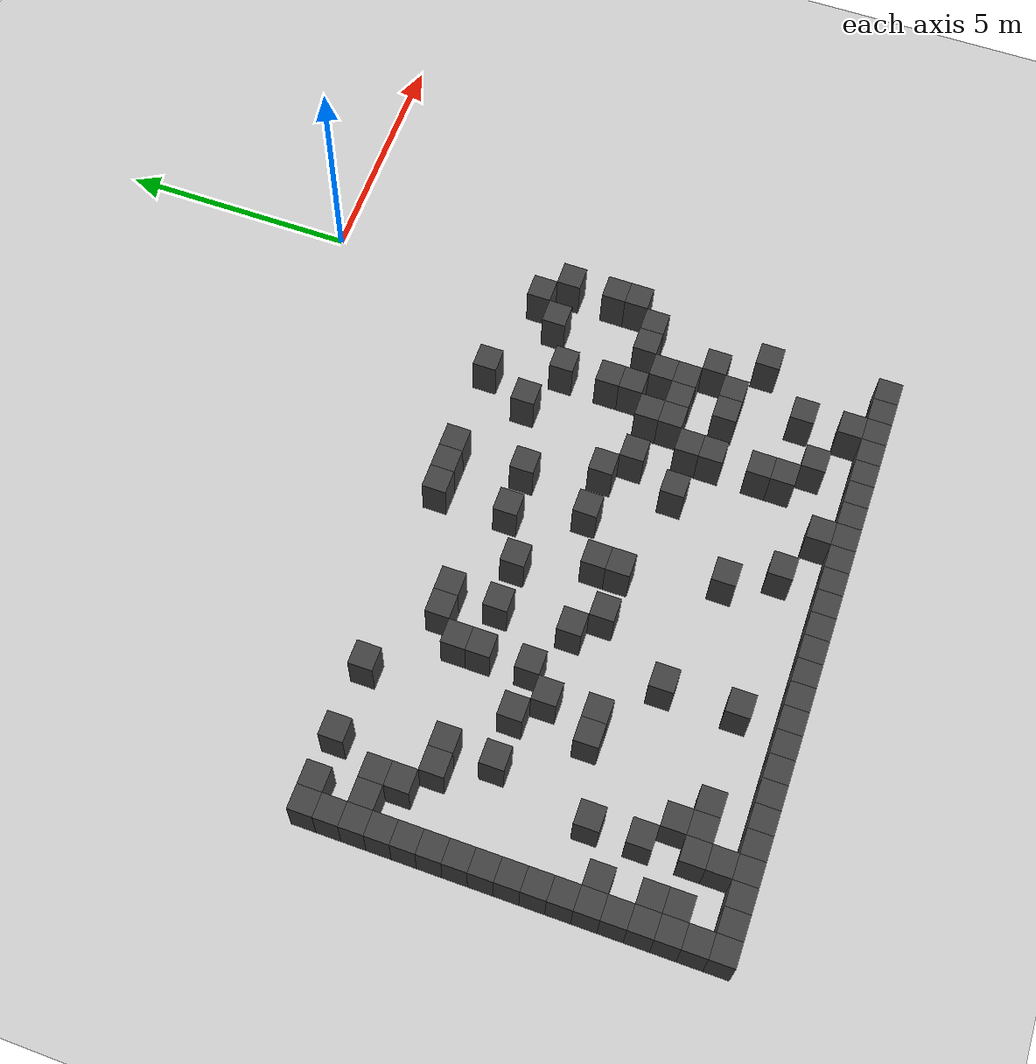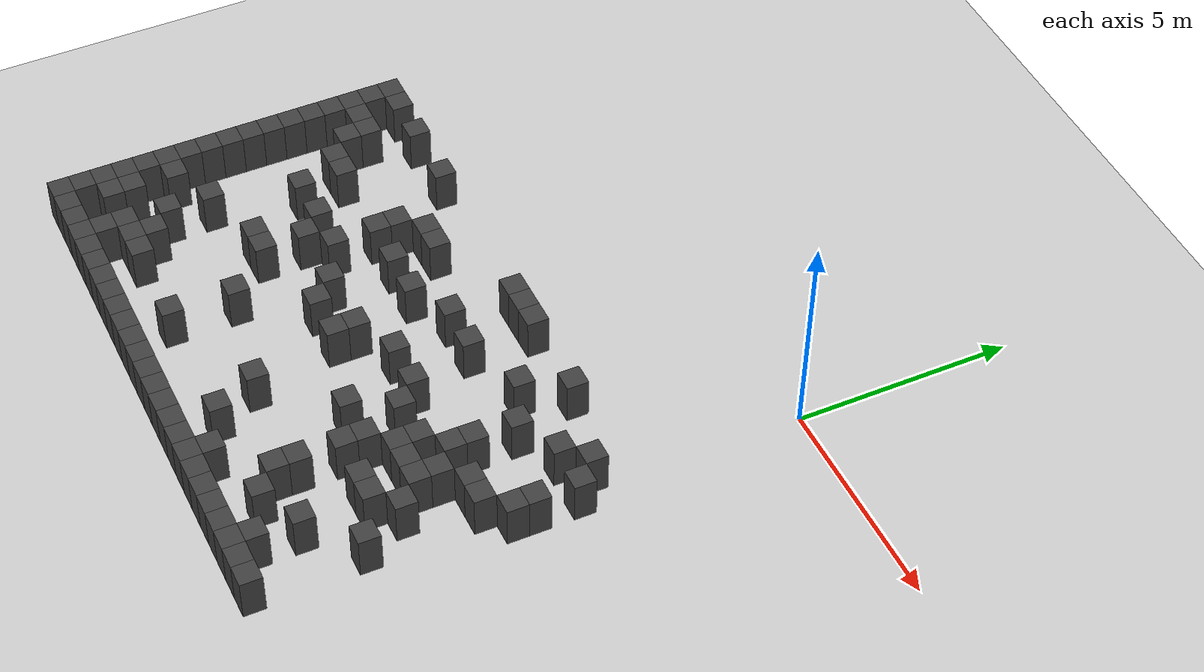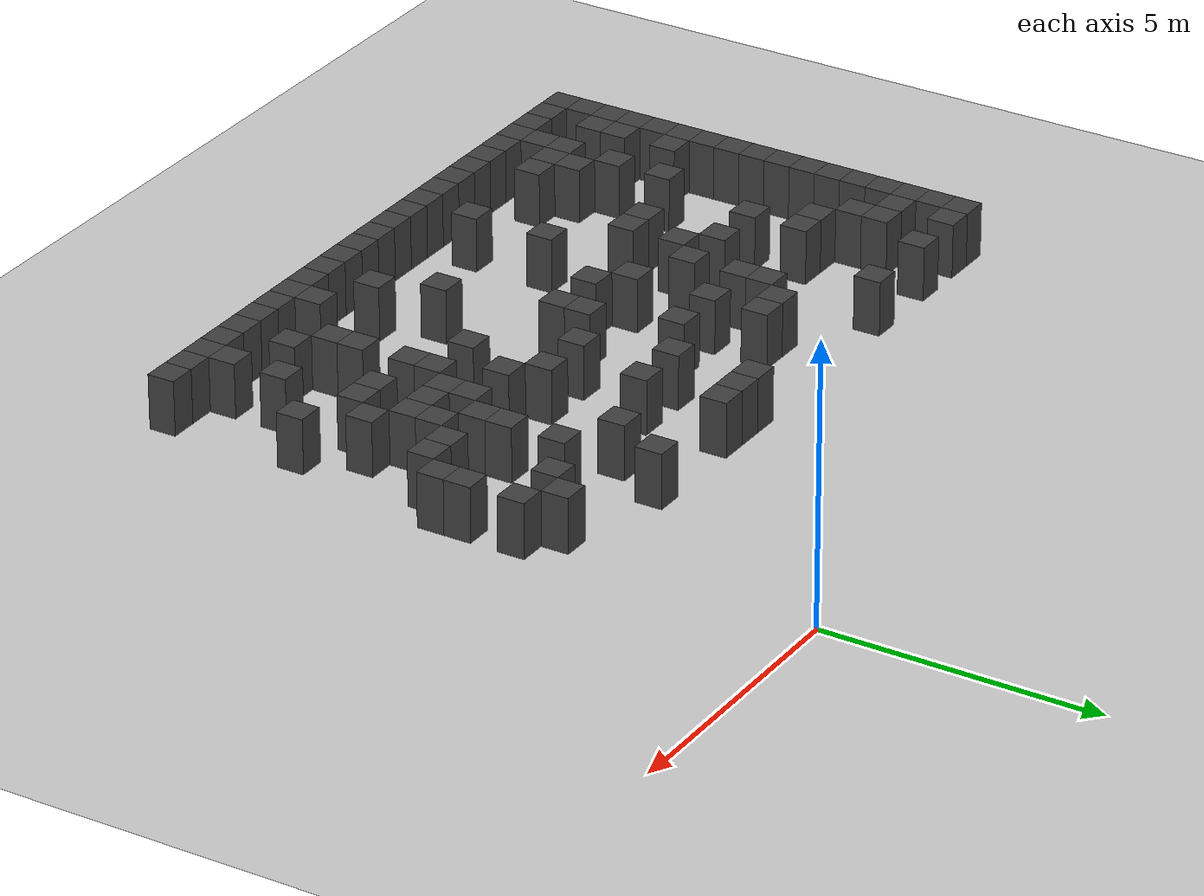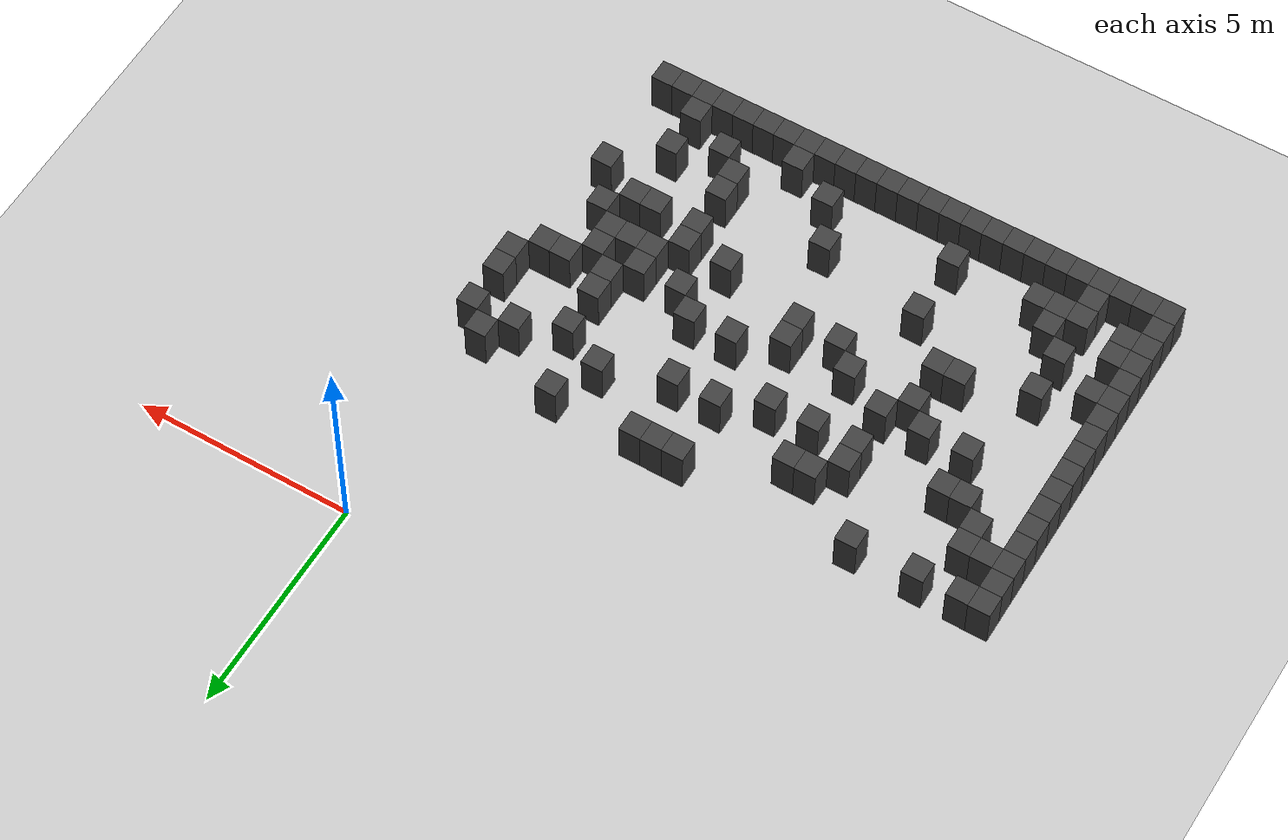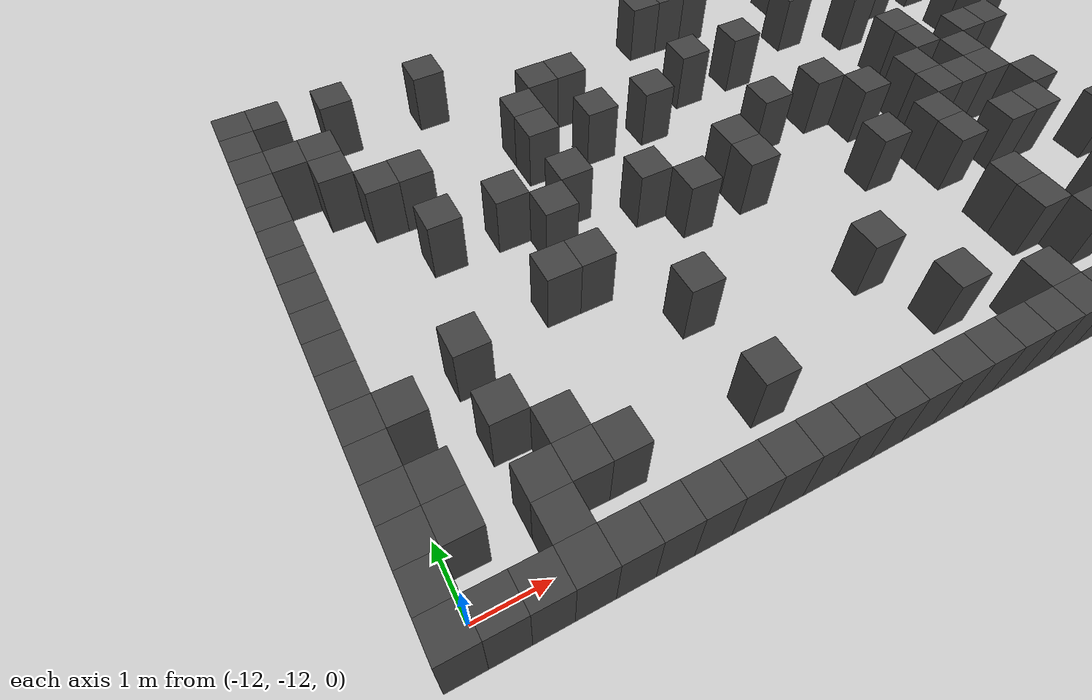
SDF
<sdf version="1.7">
 <world name="map_4581">
  <model name="ground_plane">
   <static>true</static>
   <link name="link">
    <collision name="collision">
     <geometry><plane><normal>0 0 1</normal><size>200 200</size></plane></geometry>
    </collision>
    <visual name="visual">
     <geometry><plane><normal>0 0 1</normal><size>200 200</size></plane></geometry>
     <material><ambient>0.8 0.8 0.8 1</ambient><diffuse>0.8 0.8 0.8 1</diffuse></material>
    </visual>
   </link>
  </model>
  <model name="maze_environment">
   <static>true</static>
   <link name="wall_452">
    <pose>-12.250 -4.250 0.500 0 0 0</pose>
    <collision name="col"><geometry><box><size>0.5 0.5 1.0</size></box></geometry></collision>
    <visual name="vis">
     <geometry><box><size>0.5 0.5 1.0</size></box></geometry>
     <material><ambient>0.15 0.15 0.15 1</ambient><diffuse>0.25 0.25 0.25 1</diffuse></material>
    </visual>
   </link>
   <link name="wall_453">
    <pose>-11.750 -4.250 0.500 0 0 0</pose>
    <collision name="col"><geometry><box><size>0.5 0.5 1.0</size></box></geometry></collision>
    <visual name="vis">
     <geometry><box><size>0.5 0.5 1.0</size></box></geometry>
     <material><ambient>0.15 0.15 0.15 1</ambient><diffuse>0.25 0.25 0.25 1</diffuse></material>
    </visual>
   </link>
   <link name="wall_454">
    <pose>-10.750 -4.250 0.500 0 0 0</pose>
    <collision name="col"><geometry><box><size>0.5 0.5 1.0</size></box></geometry></collision>
    <visual name="vis">
     <geometry><box><size>0.5 0.5 1.0</size></box></geometry>
     <material><ambient>0.15 0.15 0.15 1</ambient><diffuse>0.25 0.25 0.25 1</diffuse></material>
    </visual>
   </link>
   <link name="wall_455">
    <pose>-9.250 -4.250 0.500 0 0 0</pose>
    <collision name="col"><geometry><box><size>0.5 0.5 1.0</size></box></geometry></collision>
    <visual name="vis">
     <geometry><box><size>0.5 0.5 1.0</size></box></geometry>
     <material><ambient>0.15 0.15 0.15 1</ambient><diffuse>0.25 0.25 0.25 1</diffuse></material>
    </visual>
   </link>
   <link name="wall_456">
    <pose>-5.250 -4.250 0.500 0 0 0</pose>
    <collision name="col"><geometry><box><size>0.5 0.5 1.0</size></box></geometry></collision>
    <visual name="vis">
     <geometry><box><size>0.5 0.5 1.0</size></box></geometry>
     <material><ambient>0.15 0.15 0.15 1</ambient><diffuse>0.25 0.25 0.25 1</diffuse></material>
    </visual>
   </link>
   <link name="wall_457">
    <pose>-4.750 -4.250 0.500 0 0 0</pose>
    <collision name="col"><geometry><box><size>0.5 0.5 1.0</size></box></geometry></collision>
    <visual name="vis">
     <geometry><box><size>0.5 0.5 1.0</size></box></geometry>
     <material><ambient>0.15 0.15 0.15 1</ambient><diffuse>0.25 0.25 0.25 1</diffuse></material>
    </visual>
   </link>
   <link name="wall_458">
    <pose>-4.250 -4.250 0.500 0 0 0</pose>
    <collision name="col"><geometry><box><size>0.5 0.5 1.0</size></box></geometry></collision>
    <visual name="vis">
     <geometry><box><size>0.5 0.5 1.0</size></box></geometry>
     <material><ambient>0.15 0.15 0.15 1</ambient><diffuse>0.25 0.25 0.25 1</diffuse></material>
    </visual>
   </link>
   <link name="wall_459">
    <pose>-2.250 -4.250 0.500 0 0 0</pose>
    <collision name="col"><geometry><box><size>0.5 0.5 1.0</size></box></geometry></collision>
    <visual name="vis">
     <geometry><box><size>0.5 0.5 1.0</size></box></geometry>
     <material><ambient>0.15 0.15 0.15 1</ambient><diffuse>0.25 0.25 0.25 1</diffuse></material>
    </visual>
   </link>
   <link name="wall_466">
    <pose>-12.250 -4.750 0.500 0 0 0</pose>
    <collision name="col"><geometry><box><size>0.5 0.5 1.0</size></box></geometry></collision>
    <visual name="vis">
     <geometry><box><size>0.5 0.5 1.0</size></box></geometry>
     <material><ambient>0.15 0.15 0.15 1</ambient><diffuse>0.25 0.25 0.25 1</diffuse></material>
    </visual>
   </link>
   <link name="wall_467">
    <pose>-0.250 -4.750 0.500 0 0 0</pose>
    <collision name="col"><geometry><box><size>0.5 0.5 1.0</size></box></geometry></collision>
    <visual name="vis">
     <geometry><box><size>0.5 0.5 1.0</size></box></geometry>
     <material><ambient>0.15 0.15 0.15 1</ambient><diffuse>0.25 0.25 0.25 1</diffuse></material>
    </visual>
   </link>
   <link name="wall_474">
    <pose>-12.250 -5.250 0.500 0 0 0</pose>
    <collision name="col"><geometry><box><size>0.5 0.5 1.0</size></box></geometry></collision>
    <visual name="vis">
     <geometry><box><size>0.5 0.5 1.0</size></box></geometry>
     <material><ambient>0.15 0.15 0.15 1</ambient><diffuse>0.25 0.25 0.25 1</diffuse></material>
    </visual>
   </link>
   <link name="wall_475">
    <pose>-11.750 -5.250 0.500 0 0 0</pose>
    <collision name="col"><geometry><box><size>0.5 0.5 1.0</size></box></geometry></collision>
    <visual name="vis">
     <geometry><box><size>0.5 0.5 1.0</size></box></geometry>
     <material><ambient>0.15 0.15 0.15 1</ambient><diffuse>0.25 0.25 0.25 1</diffuse></material>
    </visual>
   </link>
   <link name="wall_476">
    <pose>-11.250 -5.250 0.500 0 0 0</pose>
    <collision name="col"><geometry><box><size>0.5 0.5 1.0</size></box></geometry></collision>
    <visual name="vis">
     <geometry><box><size>0.5 0.5 1.0</size></box></geometry>
     <material><ambient>0.15 0.15 0.15 1</ambient><diffuse>0.25 0.25 0.25 1</diffuse></material>
    </visual>
   </link>
   <link name="wall_477">
    <pose>-7.750 -5.250 0.500 0 0 0</pose>
    <collision name="col"><geometry><box><size>0.5 0.5 1.0</size></box></geometry></collision>
    <visual name="vis">
     <geometry><box><size>0.5 0.5 1.0</size></box></geometry>
     <material><ambient>0.15 0.15 0.15 1</ambient><diffuse>0.25 0.25 0.25 1</diffuse></material>
    </visual>
   </link>
   <link name="wall_478">
    <pose>-7.250 -5.250 0.500 0 0 0</pose>
    <collision name="col"><geometry><box><size>0.5 0.5 1.0</size></box></geometry></collision>
    <visual name="vis">
     <geometry><box><size>0.5 0.5 1.0</size></box></geometry>
     <material><ambient>0.15 0.15 0.15 1</ambient><diffuse>0.25 0.25 0.25 1</diffuse></material>
    </visual>
   </link>
   <link name="wall_479">
    <pose>-2.750 -5.250 0.500 0 0 0</pose>
    <collision name="col"><geometry><box><size>0.5 0.5 1.0</size></box></geometry></collision>
    <visual name="vis">
     <geometry><box><size>0.5 0.5 1.0</size></box></geometry>
     <material><ambient>0.15 0.15 0.15 1</ambient><diffuse>0.25 0.25 0.25 1</diffuse></material>
    </visual>
   </link>
   <link name="wall_480">
    <pose>-0.750 -5.250 0.500 0 0 0</pose>
    <collision name="col"><geometry><box><size>0.5 0.5 1.0</size></box></geometry></collision>
    <visual name="vis">
     <geometry><box><size>0.5 0.5 1.0</size></box></geometry>
     <material><ambient>0.15 0.15 0.15 1</ambient><diffuse>0.25 0.25 0.25 1</diffuse></material>
    </visual>
   </link>
   <link name="wall_481">
    <pose>0.250 -5.250 0.500 0 0 0</pose>
    <collision name="col"><geometry><box><size>0.5 0.5 1.0</size></box></geometry></collision>
    <visual name="vis">
     <geometry><box><size>0.5 0.5 1.0</size></box></geometry>
     <material><ambient>0.15 0.15 0.15 1</ambient><diffuse>0.25 0.25 0.25 1</diffuse></material>
    </visual>
   </link>
   <link name="wall_489">
    <pose>-12.250 -5.750 0.500 0 0 0</pose>
    <collision name="col"><geometry><box><size>0.5 0.5 1.0</size></box></geometry></collision>
    <visual name="vis">
     <geometry><box><size>0.5 0.5 1.0</size></box></geometry>
     <material><ambient>0.15 0.15 0.15 1</ambient><diffuse>0.25 0.25 0.25 1</diffuse></material>
    </visual>
   </link>
   <link name="wall_490">
    <pose>-11.250 -5.750 0.500 0 0 0</pose>
    <collision name="col"><geometry><box><size>0.5 0.5 1.0</size></box></geometry></collision>
    <visual name="vis">
     <geometry><box><size>0.5 0.5 1.0</size></box></geometry>
     <material><ambient>0.15 0.15 0.15 1</ambient><diffuse>0.25 0.25 0.25 1</diffuse></material>
    </visual>
   </link>
   <link name="wall_491">
    <pose>-8.250 -5.750 0.500 0 0 0</pose>
    <collision name="col"><geometry><box><size>0.5 0.5 1.0</size></box></geometry></collision>
    <visual name="vis">
     <geometry><box><size>0.5 0.5 1.0</size></box></geometry>
     <material><ambient>0.15 0.15 0.15 1</ambient><diffuse>0.25 0.25 0.25 1</diffuse></material>
    </visual>
   </link>
   <link name="wall_492">
    <pose>-5.250 -5.750 0.500 0 0 0</pose>
    <collision name="col"><geometry><box><size>0.5 0.5 1.0</size></box></geometry></collision>
    <visual name="vis">
     <geometry><box><size>0.5 0.5 1.0</size></box></geometry>
     <material><ambient>0.15 0.15 0.15 1</ambient><diffuse>0.25 0.25 0.25 1</diffuse></material>
    </visual>
   </link>
   <link name="wall_493">
    <pose>-4.250 -5.750 0.500 0 0 0</pose>
    <collision name="col"><geometry><box><size>0.5 0.5 1.0</size></box></geometry></collision>
    <visual name="vis">
     <geometry><box><size>0.5 0.5 1.0</size></box></geometry>
     <material><ambient>0.15 0.15 0.15 1</ambient><diffuse>0.25 0.25 0.25 1</diffuse></material>
    </visual>
   </link>
   <link name="wall_494">
    <pose>-1.750 -5.750 0.500 0 0 0</pose>
    <collision name="col"><geometry><box><size>0.5 0.5 1.0</size></box></geometry></collision>
    <visual name="vis">
     <geometry><box><size>0.5 0.5 1.0</size></box></geometry>
     <material><ambient>0.15 0.15 0.15 1</ambient><diffuse>0.25 0.25 0.25 1</diffuse></material>
    </visual>
   </link>
   <link name="wall_501">
    <pose>-12.250 -6.250 0.500 0 0 0</pose>
    <collision name="col"><geometry><box><size>0.5 0.5 1.0</size></box></geometry></collision>
    <visual name="vis">
     <geometry><box><size>0.5 0.5 1.0</size></box></geometry>
     <material><ambient>0.15 0.15 0.15 1</ambient><diffuse>0.25 0.25 0.25 1</diffuse></material>
    </visual>
   </link>
   <link name="wall_502">
    <pose>-10.750 -6.250 0.500 0 0 0</pose>
    <collision name="col"><geometry><box><size>0.5 0.5 1.0</size></box></geometry></collision>
    <visual name="vis">
     <geometry><box><size>0.5 0.5 1.0</size></box></geometry>
     <material><ambient>0.15 0.15 0.15 1</ambient><diffuse>0.25 0.25 0.25 1</diffuse></material>
    </visual>
   </link>
   <link name="wall_503">
    <pose>-10.250 -6.250 0.500 0 0 0</pose>
    <collision name="col"><geometry><box><size>0.5 0.5 1.0</size></box></geometry></collision>
    <visual name="vis">
     <geometry><box><size>0.5 0.5 1.0</size></box></geometry>
     <material><ambient>0.15 0.15 0.15 1</ambient><diffuse>0.25 0.25 0.25 1</diffuse></material>
    </visual>
   </link>
   <link name="wall_504">
    <pose>-8.250 -6.250 0.500 0 0 0</pose>
    <collision name="col"><geometry><box><size>0.5 0.5 1.0</size></box></geometry></collision>
    <visual name="vis">
     <geometry><box><size>0.5 0.5 1.0</size></box></geometry>
     <material><ambient>0.15 0.15 0.15 1</ambient><diffuse>0.25 0.25 0.25 1</diffuse></material>
    </visual>
   </link>
   <link name="wall_505">
    <pose>-7.250 -6.250 0.500 0 0 0</pose>
    <collision name="col"><geometry><box><size>0.5 0.5 1.0</size></box></geometry></collision>
    <visual name="vis">
     <geometry><box><size>0.5 0.5 1.0</size></box></geometry>
     <material><ambient>0.15 0.15 0.15 1</ambient><diffuse>0.25 0.25 0.25 1</diffuse></material>
    </visual>
   </link>
   <link name="wall_506">
    <pose>-6.250 -6.250 0.500 0 0 0</pose>
    <collision name="col"><geometry><box><size>0.5 0.5 1.0</size></box></geometry></collision>
    <visual name="vis">
     <geometry><box><size>0.5 0.5 1.0</size></box></geometry>
     <material><ambient>0.15 0.15 0.15 1</ambient><diffuse>0.25 0.25 0.25 1</diffuse></material>
    </visual>
   </link>
   <link name="wall_507">
    <pose>0.250 -6.250 0.500 0 0 0</pose>
    <collision name="col"><geometry><box><size>0.5 0.5 1.0</size></box></geometry></collision>
    <visual name="vis">
     <geometry><box><size>0.5 0.5 1.0</size></box></geometry>
     <material><ambient>0.15 0.15 0.15 1</ambient><diffuse>0.25 0.25 0.25 1</diffuse></material>
    </visual>
   </link>
   <link name="wall_516">
    <pose>-12.250 -6.750 0.500 0 0 0</pose>
    <collision name="col"><geometry><box><size>0.5 0.5 1.0</size></box></geometry></collision>
    <visual name="vis">
     <geometry><box><size>0.5 0.5 1.0</size></box></geometry>
     <material><ambient>0.15 0.15 0.15 1</ambient><diffuse>0.25 0.25 0.25 1</diffuse></material>
    </visual>
   </link>
   <link name="wall_517">
    <pose>-1.750 -6.750 0.500 0 0 0</pose>
    <collision name="col"><geometry><box><size>0.5 0.5 1.0</size></box></geometry></collision>
    <visual name="vis">
     <geometry><box><size>0.5 0.5 1.0</size></box></geometry>
     <material><ambient>0.15 0.15 0.15 1</ambient><diffuse>0.25 0.25 0.25 1</diffuse></material>
    </visual>
   </link>
   <link name="wall_518">
    <pose>0.250 -6.750 0.500 0 0 0</pose>
    <collision name="col"><geometry><box><size>0.5 0.5 1.0</size></box></geometry></collision>
    <visual name="vis">
     <geometry><box><size>0.5 0.5 1.0</size></box></geometry>
     <material><ambient>0.15 0.15 0.15 1</ambient><diffuse>0.25 0.25 0.25 1</diffuse></material>
    </visual>
   </link>
   <link name="wall_525">
    <pose>-12.250 -7.250 0.500 0 0 0</pose>
    <collision name="col"><geometry><box><size>0.5 0.5 1.0</size></box></geometry></collision>
    <visual name="vis">
     <geometry><box><size>0.5 0.5 1.0</size></box></geometry>
     <material><ambient>0.15 0.15 0.15 1</ambient><diffuse>0.25 0.25 0.25 1</diffuse></material>
    </visual>
   </link>
   <link name="wall_526">
    <pose>-10.250 -7.250 0.500 0 0 0</pose>
    <collision name="col"><geometry><box><size>0.5 0.5 1.0</size></box></geometry></collision>
    <visual name="vis">
     <geometry><box><size>0.5 0.5 1.0</size></box></geometry>
     <material><ambient>0.15 0.15 0.15 1</ambient><diffuse>0.25 0.25 0.25 1</diffuse></material>
    </visual>
   </link>
   <link name="wall_527">
    <pose>-9.250 -7.250 0.500 0 0 0</pose>
    <collision name="col"><geometry><box><size>0.5 0.5 1.0</size></box></geometry></collision>
    <visual name="vis">
     <geometry><box><size>0.5 0.5 1.0</size></box></geometry>
     <material><ambient>0.15 0.15 0.15 1</ambient><diffuse>0.25 0.25 0.25 1</diffuse></material>
    </visual>
   </link>
   <link name="wall_528">
    <pose>-8.250 -7.250 0.500 0 0 0</pose>
    <collision name="col"><geometry><box><size>0.5 0.5 1.0</size></box></geometry></collision>
    <visual name="vis">
     <geometry><box><size>0.5 0.5 1.0</size></box></geometry>
     <material><ambient>0.15 0.15 0.15 1</ambient><diffuse>0.25 0.25 0.25 1</diffuse></material>
    </visual>
   </link>
   <link name="wall_529">
    <pose>-4.750 -7.250 0.500 0 0 0</pose>
    <collision name="col"><geometry><box><size>0.5 0.5 1.0</size></box></geometry></collision>
    <visual name="vis">
     <geometry><box><size>0.5 0.5 1.0</size></box></geometry>
     <material><ambient>0.15 0.15 0.15 1</ambient><diffuse>0.25 0.25 0.25 1</diffuse></material>
    </visual>
   </link>
   <link name="wall_530">
    <pose>-3.750 -7.250 0.500 0 0 0</pose>
    <collision name="col"><geometry><box><size>0.5 0.5 1.0</size></box></geometry></collision>
    <visual name="vis">
     <geometry><box><size>0.5 0.5 1.0</size></box></geometry>
     <material><ambient>0.15 0.15 0.15 1</ambient><diffuse>0.25 0.25 0.25 1</diffuse></material>
    </visual>
   </link>
   <link name="wall_531">
    <pose>-1.750 -7.250 0.500 0 0 0</pose>
    <collision name="col"><geometry><box><size>0.5 0.5 1.0</size></box></geometry></collision>
    <visual name="vis">
     <geometry><box><size>0.5 0.5 1.0</size></box></geometry>
     <material><ambient>0.15 0.15 0.15 1</ambient><diffuse>0.25 0.25 0.25 1</diffuse></material>
    </visual>
   </link>
   <link name="wall_532">
    <pose>-0.750 -7.250 0.500 0 0 0</pose>
    <collision name="col"><geometry><box><size>0.5 0.5 1.0</size></box></geometry></collision>
    <visual name="vis">
     <geometry><box><size>0.5 0.5 1.0</size></box></geometry>
     <material><ambient>0.15 0.15 0.15 1</ambient><diffuse>0.25 0.25 0.25 1</diffuse></material>
    </visual>
   </link>
   <link name="wall_533">
    <pose>-0.250 -7.250 0.500 0 0 0</pose>
    <collision name="col"><geometry><box><size>0.5 0.5 1.0</size></box></geometry></collision>
    <visual name="vis">
     <geometry><box><size>0.5 0.5 1.0</size></box></geometry>
     <material><ambient>0.15 0.15 0.15 1</ambient><diffuse>0.25 0.25 0.25 1</diffuse></material>
    </visual>
   </link>
   <link name="wall_541">
    <pose>-12.250 -7.750 0.500 0 0 0</pose>
    <collision name="col"><geometry><box><size>0.5 0.5 1.0</size></box></geometry></collision>
    <visual name="vis">
     <geometry><box><size>0.5 0.5 1.0</size></box></geometry>
     <material><ambient>0.15 0.15 0.15 1</ambient><diffuse>0.25 0.25 0.25 1</diffuse></material>
    </visual>
   </link>
   <link name="wall_542">
    <pose>-8.750 -7.750 0.500 0 0 0</pose>
    <collision name="col"><geometry><box><size>0.5 0.5 1.0</size></box></geometry></collision>
    <visual name="vis">
     <geometry><box><size>0.5 0.5 1.0</size></box></geometry>
     <material><ambient>0.15 0.15 0.15 1</ambient><diffuse>0.25 0.25 0.25 1</diffuse></material>
    </visual>
   </link>
   <link name="wall_543">
    <pose>-7.250 -7.750 0.500 0 0 0</pose>
    <collision name="col"><geometry><box><size>0.5 0.5 1.0</size></box></geometry></collision>
    <visual name="vis">
     <geometry><box><size>0.5 0.5 1.0</size></box></geometry>
     <material><ambient>0.15 0.15 0.15 1</ambient><diffuse>0.25 0.25 0.25 1</diffuse></material>
    </visual>
   </link>
   <link name="wall_544">
    <pose>-5.750 -7.750 0.500 0 0 0</pose>
    <collision name="col"><geometry><box><size>0.5 0.5 1.0</size></box></geometry></collision>
    <visual name="vis">
     <geometry><box><size>0.5 0.5 1.0</size></box></geometry>
     <material><ambient>0.15 0.15 0.15 1</ambient><diffuse>0.25 0.25 0.25 1</diffuse></material>
    </visual>
   </link>
   <link name="wall_545">
    <pose>-3.250 -7.750 0.500 0 0 0</pose>
    <collision name="col"><geometry><box><size>0.5 0.5 1.0</size></box></geometry></collision>
    <visual name="vis">
     <geometry><box><size>0.5 0.5 1.0</size></box></geometry>
     <material><ambient>0.15 0.15 0.15 1</ambient><diffuse>0.25 0.25 0.25 1</diffuse></material>
    </visual>
   </link>
   <link name="wall_546">
    <pose>-2.250 -7.750 0.500 0 0 0</pose>
    <collision name="col"><geometry><box><size>0.5 0.5 1.0</size></box></geometry></collision>
    <visual name="vis">
     <geometry><box><size>0.5 0.5 1.0</size></box></geometry>
     <material><ambient>0.15 0.15 0.15 1</ambient><diffuse>0.25 0.25 0.25 1</diffuse></material>
    </visual>
   </link>
   <link name="wall_547">
    <pose>-1.250 -7.750 0.500 0 0 0</pose>
    <collision name="col"><geometry><box><size>0.5 0.5 1.0</size></box></geometry></collision>
    <visual name="vis">
     <geometry><box><size>0.5 0.5 1.0</size></box></geometry>
     <material><ambient>0.15 0.15 0.15 1</ambient><diffuse>0.25 0.25 0.25 1</diffuse></material>
    </visual>
   </link>
   <link name="wall_555">
    <pose>-12.250 -8.250 0.500 0 0 0</pose>
    <collision name="col"><geometry><box><size>0.5 0.5 1.0</size></box></geometry></collision>
    <visual name="vis">
     <geometry><box><size>0.5 0.5 1.0</size></box></geometry>
     <material><ambient>0.15 0.15 0.15 1</ambient><diffuse>0.25 0.25 0.25 1</diffuse></material>
    </visual>
   </link>
   <link name="wall_556">
    <pose>-6.750 -8.250 0.500 0 0 0</pose>
    <collision name="col"><geometry><box><size>0.5 0.5 1.0</size></box></geometry></collision>
    <visual name="vis">
     <geometry><box><size>0.5 0.5 1.0</size></box></geometry>
     <material><ambient>0.15 0.15 0.15 1</ambient><diffuse>0.25 0.25 0.25 1</diffuse></material>
    </visual>
   </link>
   <link name="wall_557">
    <pose>-5.750 -8.250 0.500 0 0 0</pose>
    <collision name="col"><geometry><box><size>0.5 0.5 1.0</size></box></geometry></collision>
    <visual name="vis">
     <geometry><box><size>0.5 0.5 1.0</size></box></geometry>
     <material><ambient>0.15 0.15 0.15 1</ambient><diffuse>0.25 0.25 0.25 1</diffuse></material>
    </visual>
   </link>
   <link name="wall_558">
    <pose>-2.250 -8.250 0.500 0 0 0</pose>
    <collision name="col"><geometry><box><size>0.5 0.5 1.0</size></box></geometry></collision>
    <visual name="vis">
     <geometry><box><size>0.5 0.5 1.0</size></box></geometry>
     <material><ambient>0.15 0.15 0.15 1</ambient><diffuse>0.25 0.25 0.25 1</diffuse></material>
    </visual>
   </link>
   <link name="wall_559">
    <pose>-1.750 -8.250 0.500 0 0 0</pose>
    <collision name="col"><geometry><box><size>0.5 0.5 1.0</size></box></geometry></collision>
    <visual name="vis">
     <geometry><box><size>0.5 0.5 1.0</size></box></geometry>
     <material><ambient>0.15 0.15 0.15 1</ambient><diffuse>0.25 0.25 0.25 1</diffuse></material>
    </visual>
   </link>
   <link name="wall_560">
    <pose>-1.250 -8.250 0.500 0 0 0</pose>
    <collision name="col"><geometry><box><size>0.5 0.5 1.0</size></box></geometry></collision>
    <visual name="vis">
     <geometry><box><size>0.5 0.5 1.0</size></box></geometry>
     <material><ambient>0.15 0.15 0.15 1</ambient><diffuse>0.25 0.25 0.25 1</diffuse></material>
    </visual>
   </link>
   <link name="wall_568">
    <pose>-12.250 -8.750 0.500 0 0 0</pose>
    <collision name="col"><geometry><box><size>0.5 0.5 1.0</size></box></geometry></collision>
    <visual name="vis">
     <geometry><box><size>0.5 0.5 1.0</size></box></geometry>
     <material><ambient>0.15 0.15 0.15 1</ambient><diffuse>0.25 0.25 0.25 1</diffuse></material>
    </visual>
   </link>
   <link name="wall_569">
    <pose>-9.250 -8.750 0.500 0 0 0</pose>
    <collision name="col"><geometry><box><size>0.5 0.5 1.0</size></box></geometry></collision>
    <visual name="vis">
     <geometry><box><size>0.5 0.5 1.0</size></box></geometry>
     <material><ambient>0.15 0.15 0.15 1</ambient><diffuse>0.25 0.25 0.25 1</diffuse></material>
    </visual>
   </link>
   <link name="wall_570">
    <pose>-8.750 -8.750 0.500 0 0 0</pose>
    <collision name="col"><geometry><box><size>0.5 0.5 1.0</size></box></geometry></collision>
    <visual name="vis">
     <geometry><box><size>0.5 0.5 1.0</size></box></geometry>
     <material><ambient>0.15 0.15 0.15 1</ambient><diffuse>0.25 0.25 0.25 1</diffuse></material>
    </visual>
   </link>
   <link name="wall_571">
    <pose>-3.750 -8.750 0.500 0 0 0</pose>
    <collision name="col"><geometry><box><size>0.5 0.5 1.0</size></box></geometry></collision>
    <visual name="vis">
     <geometry><box><size>0.5 0.5 1.0</size></box></geometry>
     <material><ambient>0.15 0.15 0.15 1</ambient><diffuse>0.25 0.25 0.25 1</diffuse></material>
    </visual>
   </link>
   <link name="wall_572">
    <pose>-2.750 -8.750 0.500 0 0 0</pose>
    <collision name="col"><geometry><box><size>0.5 0.5 1.0</size></box></geometry></collision>
    <visual name="vis">
     <geometry><box><size>0.5 0.5 1.0</size></box></geometry>
     <material><ambient>0.15 0.15 0.15 1</ambient><diffuse>0.25 0.25 0.25 1</diffuse></material>
    </visual>
   </link>
   <link name="wall_573">
    <pose>-0.750 -8.750 0.500 0 0 0</pose>
    <collision name="col"><geometry><box><size>0.5 0.5 1.0</size></box></geometry></collision>
    <visual name="vis">
     <geometry><box><size>0.5 0.5 1.0</size></box></geometry>
     <material><ambient>0.15 0.15 0.15 1</ambient><diffuse>0.25 0.25 0.25 1</diffuse></material>
    </visual>
   </link>
   <link name="wall_580">
    <pose>-12.250 -9.250 0.500 0 0 0</pose>
    <collision name="col"><geometry><box><size>0.5 0.5 1.0</size></box></geometry></collision>
    <visual name="vis">
     <geometry><box><size>0.5 0.5 1.0</size></box></geometry>
     <material><ambient>0.15 0.15 0.15 1</ambient><diffuse>0.25 0.25 0.25 1</diffuse></material>
    </visual>
   </link>
   <link name="wall_581">
    <pose>-10.750 -9.250 0.500 0 0 0</pose>
    <collision name="col"><geometry><box><size>0.5 0.5 1.0</size></box></geometry></collision>
    <visual name="vis">
     <geometry><box><size>0.5 0.5 1.0</size></box></geometry>
     <material><ambient>0.15 0.15 0.15 1</ambient><diffuse>0.25 0.25 0.25 1</diffuse></material>
    </visual>
   </link>
   <link name="wall_582">
    <pose>-2.750 -9.250 0.500 0 0 0</pose>
    <collision name="col"><geometry><box><size>0.5 0.5 1.0</size></box></geometry></collision>
    <visual name="vis">
     <geometry><box><size>0.5 0.5 1.0</size></box></geometry>
     <material><ambient>0.15 0.15 0.15 1</ambient><diffuse>0.25 0.25 0.25 1</diffuse></material>
    </visual>
   </link>
   <link name="wall_583">
    <pose>-1.750 -9.250 0.500 0 0 0</pose>
    <collision name="col"><geometry><box><size>0.5 0.5 1.0</size></box></geometry></collision>
    <visual name="vis">
     <geometry><box><size>0.5 0.5 1.0</size></box></geometry>
     <material><ambient>0.15 0.15 0.15 1</ambient><diffuse>0.25 0.25 0.25 1</diffuse></material>
    </visual>
   </link>
   <link name="wall_584">
    <pose>-1.250 -9.250 0.500 0 0 0</pose>
    <collision name="col"><geometry><box><size>0.5 0.5 1.0</size></box></geometry></collision>
    <visual name="vis">
     <geometry><box><size>0.5 0.5 1.0</size></box></geometry>
     <material><ambient>0.15 0.15 0.15 1</ambient><diffuse>0.25 0.25 0.25 1</diffuse></material>
    </visual>
   </link>
   <link name="wall_592">
    <pose>-12.250 -9.750 0.500 0 0 0</pose>
    <collision name="col"><geometry><box><size>0.5 0.5 1.0</size></box></geometry></collision>
    <visual name="vis">
     <geometry><box><size>0.5 0.5 1.0</size></box></geometry>
     <material><ambient>0.15 0.15 0.15 1</ambient><diffuse>0.25 0.25 0.25 1</diffuse></material>
    </visual>
   </link>
   <link name="wall_593">
    <pose>-11.750 -9.750 0.500 0 0 0</pose>
    <collision name="col"><geometry><box><size>0.5 0.5 1.0</size></box></geometry></collision>
    <visual name="vis">
     <geometry><box><size>0.5 0.5 1.0</size></box></geometry>
     <material><ambient>0.15 0.15 0.15 1</ambient><diffuse>0.25 0.25 0.25 1</diffuse></material>
    </visual>
   </link>
   <link name="wall_594">
    <pose>-7.750 -9.750 0.500 0 0 0</pose>
    <collision name="col"><geometry><box><size>0.5 0.5 1.0</size></box></geometry></collision>
    <visual name="vis">
     <geometry><box><size>0.5 0.5 1.0</size></box></geometry>
     <material><ambient>0.15 0.15 0.15 1</ambient><diffuse>0.25 0.25 0.25 1</diffuse></material>
    </visual>
   </link>
   <link name="wall_595">
    <pose>-0.250 -9.750 0.500 0 0 0</pose>
    <collision name="col"><geometry><box><size>0.5 0.5 1.0</size></box></geometry></collision>
    <visual name="vis">
     <geometry><box><size>0.5 0.5 1.0</size></box></geometry>
     <material><ambient>0.15 0.15 0.15 1</ambient><diffuse>0.25 0.25 0.25 1</diffuse></material>
    </visual>
   </link>
   <link name="wall_600">
    <pose>-12.250 -10.250 0.500 0 0 0</pose>
    <collision name="col"><geometry><box><size>0.5 0.5 1.0</size></box></geometry></collision>
    <visual name="vis">
     <geometry><box><size>0.5 0.5 1.0</size></box></geometry>
     <material><ambient>0.15 0.15 0.15 1</ambient><diffuse>0.25 0.25 0.25 1</diffuse></material>
    </visual>
   </link>
   <link name="wall_601">
    <pose>-10.750 -10.250 0.500 0 0 0</pose>
    <collision name="col"><geometry><box><size>0.5 0.5 1.0</size></box></geometry></collision>
    <visual name="vis">
     <geometry><box><size>0.5 0.5 1.0</size></box></geometry>
     <material><ambient>0.15 0.15 0.15 1</ambient><diffuse>0.25 0.25 0.25 1</diffuse></material>
    </visual>
   </link>
   <link name="wall_602">
    <pose>-5.250 -10.250 0.500 0 0 0</pose>
    <collision name="col"><geometry><box><size>0.5 0.5 1.0</size></box></geometry></collision>
    <visual name="vis">
     <geometry><box><size>0.5 0.5 1.0</size></box></geometry>
     <material><ambient>0.15 0.15 0.15 1</ambient><diffuse>0.25 0.25 0.25 1</diffuse></material>
    </visual>
   </link>
   <link name="wall_603">
    <pose>-2.750 -10.250 0.500 0 0 0</pose>
    <collision name="col"><geometry><box><size>0.5 0.5 1.0</size></box></geometry></collision>
    <visual name="vis">
     <geometry><box><size>0.5 0.5 1.0</size></box></geometry>
     <material><ambient>0.15 0.15 0.15 1</ambient><diffuse>0.25 0.25 0.25 1</diffuse></material>
    </visual>
   </link>
   <link name="wall_612">
    <pose>-12.250 -10.750 0.500 0 0 0</pose>
    <collision name="col"><geometry><box><size>0.5 0.5 1.0</size></box></geometry></collision>
    <visual name="vis">
     <geometry><box><size>0.5 0.5 1.0</size></box></geometry>
     <material><ambient>0.15 0.15 0.15 1</ambient><diffuse>0.25 0.25 0.25 1</diffuse></material>
    </visual>
   </link>
   <link name="wall_613">
    <pose>-11.750 -10.750 0.500 0 0 0</pose>
    <collision name="col"><geometry><box><size>0.5 0.5 1.0</size></box></geometry></collision>
    <visual name="vis">
     <geometry><box><size>0.5 0.5 1.0</size></box></geometry>
     <material><ambient>0.15 0.15 0.15 1</ambient><diffuse>0.25 0.25 0.25 1</diffuse></material>
    </visual>
   </link>
   <link name="wall_614">
    <pose>-10.250 -10.750 0.500 0 0 0</pose>
    <collision name="col"><geometry><box><size>0.5 0.5 1.0</size></box></geometry></collision>
    <visual name="vis">
     <geometry><box><size>0.5 0.5 1.0</size></box></geometry>
     <material><ambient>0.15 0.15 0.15 1</ambient><diffuse>0.25 0.25 0.25 1</diffuse></material>
    </visual>
   </link>
   <link name="wall_615">
    <pose>-2.750 -10.750 0.500 0 0 0</pose>
    <collision name="col"><geometry><box><size>0.5 0.5 1.0</size></box></geometry></collision>
    <visual name="vis">
     <geometry><box><size>0.5 0.5 1.0</size></box></geometry>
     <material><ambient>0.15 0.15 0.15 1</ambient><diffuse>0.25 0.25 0.25 1</diffuse></material>
    </visual>
   </link>
   <link name="wall_616">
    <pose>-1.250 -10.750 0.500 0 0 0</pose>
    <collision name="col"><geometry><box><size>0.5 0.5 1.0</size></box></geometry></collision>
    <visual name="vis">
     <geometry><box><size>0.5 0.5 1.0</size></box></geometry>
     <material><ambient>0.15 0.15 0.15 1</ambient><diffuse>0.25 0.25 0.25 1</diffuse></material>
    </visual>
   </link>
   <link name="wall_627">
    <pose>-12.250 -11.250 0.500 0 0 0</pose>
    <collision name="col"><geometry><box><size>0.5 0.5 1.0</size></box></geometry></collision>
    <visual name="vis">
     <geometry><box><size>0.5 0.5 1.0</size></box></geometry>
     <material><ambient>0.15 0.15 0.15 1</ambient><diffuse>0.25 0.25 0.25 1</diffuse></material>
    </visual>
   </link>
   <link name="wall_628">
    <pose>-11.750 -11.250 0.500 0 0 0</pose>
    <collision name="col"><geometry><box><size>0.5 0.5 1.0</size></box></geometry></collision>
    <visual name="vis">
     <geometry><box><size>0.5 0.5 1.0</size></box></geometry>
     <material><ambient>0.15 0.15 0.15 1</ambient><diffuse>0.25 0.25 0.25 1</diffuse></material>
    </visual>
   </link>
   <link name="wall_629">
    <pose>-10.750 -11.250 0.500 0 0 0</pose>
    <collision name="col"><geometry><box><size>0.5 0.5 1.0</size></box></geometry></collision>
    <visual name="vis">
     <geometry><box><size>0.5 0.5 1.0</size></box></geometry>
     <material><ambient>0.15 0.15 0.15 1</ambient><diffuse>0.25 0.25 0.25 1</diffuse></material>
    </visual>
   </link>
   <link name="wall_630">
    <pose>-10.250 -11.250 0.500 0 0 0</pose>
    <collision name="col"><geometry><box><size>0.5 0.5 1.0</size></box></geometry></collision>
    <visual name="vis">
     <geometry><box><size>0.5 0.5 1.0</size></box></geometry>
     <material><ambient>0.15 0.15 0.15 1</ambient><diffuse>0.25 0.25 0.25 1</diffuse></material>
    </visual>
   </link>
   <link name="wall_631">
    <pose>-9.750 -11.250 0.500 0 0 0</pose>
    <collision name="col"><geometry><box><size>0.5 0.5 1.0</size></box></geometry></collision>
    <visual name="vis">
     <geometry><box><size>0.5 0.5 1.0</size></box></geometry>
     <material><ambient>0.15 0.15 0.15 1</ambient><diffuse>0.25 0.25 0.25 1</diffuse></material>
    </visual>
   </link>
   <link name="wall_632">
    <pose>-7.750 -11.250 0.500 0 0 0</pose>
    <collision name="col"><geometry><box><size>0.5 0.5 1.0</size></box></geometry></collision>
    <visual name="vis">
     <geometry><box><size>0.5 0.5 1.0</size></box></geometry>
     <material><ambient>0.15 0.15 0.15 1</ambient><diffuse>0.25 0.25 0.25 1</diffuse></material>
    </visual>
   </link>
   <link name="wall_633">
    <pose>-4.750 -11.250 0.500 0 0 0</pose>
    <collision name="col"><geometry><box><size>0.5 0.5 1.0</size></box></geometry></collision>
    <visual name="vis">
     <geometry><box><size>0.5 0.5 1.0</size></box></geometry>
     <material><ambient>0.15 0.15 0.15 1</ambient><diffuse>0.25 0.25 0.25 1</diffuse></material>
    </visual>
   </link>
   <link name="wall_634">
    <pose>-2.250 -11.250 0.500 0 0 0</pose>
    <collision name="col"><geometry><box><size>0.5 0.5 1.0</size></box></geometry></collision>
    <visual name="vis">
     <geometry><box><size>0.5 0.5 1.0</size></box></geometry>
     <material><ambient>0.15 0.15 0.15 1</ambient><diffuse>0.25 0.25 0.25 1</diffuse></material>
    </visual>
   </link>
   <link name="wall_643">
    <pose>-12.250 -11.750 0.500 0 0 0</pose>
    <collision name="col"><geometry><box><size>0.5 0.5 1.0</size></box></geometry></collision>
    <visual name="vis">
     <geometry><box><size>0.5 0.5 1.0</size></box></geometry>
     <material><ambient>0.15 0.15 0.15 1</ambient><diffuse>0.25 0.25 0.25 1</diffuse></material>
    </visual>
   </link>
   <link name="wall_644">
    <pose>-10.750 -11.750 0.500 0 0 0</pose>
    <collision name="col"><geometry><box><size>0.5 0.5 1.0</size></box></geometry></collision>
    <visual name="vis">
     <geometry><box><size>0.5 0.5 1.0</size></box></geometry>
     <material><ambient>0.15 0.15 0.15 1</ambient><diffuse>0.25 0.25 0.25 1</diffuse></material>
    </visual>
   </link>
   <link name="wall_645">
    <pose>-3.750 -11.750 0.500 0 0 0</pose>
    <collision name="col"><geometry><box><size>0.5 0.5 1.0</size></box></geometry></collision>
    <visual name="vis">
     <geometry><box><size>0.5 0.5 1.0</size></box></geometry>
     <material><ambient>0.15 0.15 0.15 1</ambient><diffuse>0.25 0.25 0.25 1</diffuse></material>
    </visual>
   </link>
   <link name="wall_646">
    <pose>-1.250 -11.750 0.500 0 0 0</pose>
    <collision name="col"><geometry><box><size>0.5 0.5 1.0</size></box></geometry></collision>
    <visual name="vis">
     <geometry><box><size>0.5 0.5 1.0</size></box></geometry>
     <material><ambient>0.15 0.15 0.15 1</ambient><diffuse>0.25 0.25 0.25 1</diffuse></material>
    </visual>
   </link>
   <link name="wall_651">
    <pose>-12.250 -12.250 0.500 0 0 0</pose>
    <collision name="col"><geometry><box><size>0.5 0.5 1.0</size></box></geometry></collision>
    <visual name="vis">
     <geometry><box><size>0.5 0.5 1.0</size></box></geometry>
     <material><ambient>0.15 0.15 0.15 1</ambient><diffuse>0.25 0.25 0.25 1</diffuse></material>
    </visual>
   </link>
   <link name="wall_652">
    <pose>-11.750 -12.250 0.500 0 0 0</pose>
    <collision name="col"><geometry><box><size>0.5 0.5 1.0</size></box></geometry></collision>
    <visual name="vis">
     <geometry><box><size>0.5 0.5 1.0</size></box></geometry>
     <material><ambient>0.15 0.15 0.15 1</ambient><diffuse>0.25 0.25 0.25 1</diffuse></material>
    </visual>
   </link>
   <link name="wall_653">
    <pose>-11.250 -12.250 0.500 0 0 0</pose>
    <collision name="col"><geometry><box><size>0.5 0.5 1.0</size></box></geometry></collision>
    <visual name="vis">
     <geometry><box><size>0.5 0.5 1.0</size></box></geometry>
     <material><ambient>0.15 0.15 0.15 1</ambient><diffuse>0.25 0.25 0.25 1</diffuse></material>
    </visual>
   </link>
   <link name="wall_654">
    <pose>-10.750 -12.250 0.500 0 0 0</pose>
    <collision name="col"><geometry><box><size>0.5 0.5 1.0</size></box></geometry></collision>
    <visual name="vis">
     <geometry><box><size>0.5 0.5 1.0</size></box></geometry>
     <material><ambient>0.15 0.15 0.15 1</ambient><diffuse>0.25 0.25 0.25 1</diffuse></material>
    </visual>
   </link>
   <link name="wall_655">
    <pose>-10.250 -12.250 0.500 0 0 0</pose>
    <collision name="col"><geometry><box><size>0.5 0.5 1.0</size></box></geometry></collision>
    <visual name="vis">
     <geometry><box><size>0.5 0.5 1.0</size></box></geometry>
     <material><ambient>0.15 0.15 0.15 1</ambient><diffuse>0.25 0.25 0.25 1</diffuse></material>
    </visual>
   </link>
   <link name="wall_656">
    <pose>-9.750 -12.250 0.500 0 0 0</pose>
    <collision name="col"><geometry><box><size>0.5 0.5 1.0</size></box></geometry></collision>
    <visual name="vis">
     <geometry><box><size>0.5 0.5 1.0</size></box></geometry>
     <material><ambient>0.15 0.15 0.15 1</ambient><diffuse>0.25 0.25 0.25 1</diffuse></material>
    </visual>
   </link>
   <link name="wall_657">
    <pose>-9.250 -12.250 0.500 0 0 0</pose>
    <collision name="col"><geometry><box><size>0.5 0.5 1.0</size></box></geometry></collision>
    <visual name="vis">
     <geometry><box><size>0.5 0.5 1.0</size></box></geometry>
     <material><ambient>0.15 0.15 0.15 1</ambient><diffuse>0.25 0.25 0.25 1</diffuse></material>
    </visual>
   </link>
   <link name="wall_658">
    <pose>-8.750 -12.250 0.500 0 0 0</pose>
    <collision name="col"><geometry><box><size>0.5 0.5 1.0</size></box></geometry></collision>
    <visual name="vis">
     <geometry><box><size>0.5 0.5 1.0</size></box></geometry>
     <material><ambient>0.15 0.15 0.15 1</ambient><diffuse>0.25 0.25 0.25 1</diffuse></material>
    </visual>
   </link>
   <link name="wall_659">
    <pose>-8.250 -12.250 0.500 0 0 0</pose>
    <collision name="col"><geometry><box><size>0.5 0.5 1.0</size></box></geometry></collision>
    <visual name="vis">
     <geometry><box><size>0.5 0.5 1.0</size></box></geometry>
     <material><ambient>0.15 0.15 0.15 1</ambient><diffuse>0.25 0.25 0.25 1</diffuse></material>
    </visual>
   </link>
   <link name="wall_660">
    <pose>-7.750 -12.250 0.500 0 0 0</pose>
    <collision name="col"><geometry><box><size>0.5 0.5 1.0</size></box></geometry></collision>
    <visual name="vis">
     <geometry><box><size>0.5 0.5 1.0</size></box></geometry>
     <material><ambient>0.15 0.15 0.15 1</ambient><diffuse>0.25 0.25 0.25 1</diffuse></material>
    </visual>
   </link>
   <link name="wall_661">
    <pose>-7.250 -12.250 0.500 0 0 0</pose>
    <collision name="col"><geometry><box><size>0.5 0.5 1.0</size></box></geometry></collision>
    <visual name="vis">
     <geometry><box><size>0.5 0.5 1.0</size></box></geometry>
     <material><ambient>0.15 0.15 0.15 1</ambient><diffuse>0.25 0.25 0.25 1</diffuse></material>
    </visual>
   </link>
   <link name="wall_662">
    <pose>-6.750 -12.250 0.500 0 0 0</pose>
    <collision name="col"><geometry><box><size>0.5 0.5 1.0</size></box></geometry></collision>
    <visual name="vis">
     <geometry><box><size>0.5 0.5 1.0</size></box></geometry>
     <material><ambient>0.15 0.15 0.15 1</ambient><diffuse>0.25 0.25 0.25 1</diffuse></material>
    </visual>
   </link>
   <link name="wall_663">
    <pose>-6.250 -12.250 0.500 0 0 0</pose>
    <collision name="col"><geometry><box><size>0.5 0.5 1.0</size></box></geometry></collision>
    <visual name="vis">
     <geometry><box><size>0.5 0.5 1.0</size></box></geometry>
     <material><ambient>0.15 0.15 0.15 1</ambient><diffuse>0.25 0.25 0.25 1</diffuse></material>
    </visual>
   </link>
   <link name="wall_664">
    <pose>-5.750 -12.250 0.500 0 0 0</pose>
    <collision name="col"><geometry><box><size>0.5 0.5 1.0</size></box></geometry></collision>
    <visual name="vis">
     <geometry><box><size>0.5 0.5 1.0</size></box></geometry>
     <material><ambient>0.15 0.15 0.15 1</ambient><diffuse>0.25 0.25 0.25 1</diffuse></material>
    </visual>
   </link>
   <link name="wall_665">
    <pose>-5.250 -12.250 0.500 0 0 0</pose>
    <collision name="col"><geometry><box><size>0.5 0.5 1.0</size></box></geometry></collision>
    <visual name="vis">
     <geometry><box><size>0.5 0.5 1.0</size></box></geometry>
     <material><ambient>0.15 0.15 0.15 1</ambient><diffuse>0.25 0.25 0.25 1</diffuse></material>
    </visual>
   </link>
   <link name="wall_666">
    <pose>-4.750 -12.250 0.500 0 0 0</pose>
    <collision name="col"><geometry><box><size>0.5 0.5 1.0</size></box></geometry></collision>
    <visual name="vis">
     <geometry><box><size>0.5 0.5 1.0</size></box></geometry>
     <material><ambient>0.15 0.15 0.15 1</ambient><diffuse>0.25 0.25 0.25 1</diffuse></material>
    </visual>
   </link>
   <link name="wall_667">
    <pose>-4.250 -12.250 0.500 0 0 0</pose>
    <collision name="col"><geometry><box><size>0.5 0.5 1.0</size></box></geometry></collision>
    <visual name="vis">
     <geometry><box><size>0.5 0.5 1.0</size></box></geometry>
     <material><ambient>0.15 0.15 0.15 1</ambient><diffuse>0.25 0.25 0.25 1</diffuse></material>
    </visual>
   </link>
   <link name="wall_668">
    <pose>-3.750 -12.250 0.500 0 0 0</pose>
    <collision name="col"><geometry><box><size>0.5 0.5 1.0</size></box></geometry></collision>
    <visual name="vis">
     <geometry><box><size>0.5 0.5 1.0</size></box></geometry>
     <material><ambient>0.15 0.15 0.15 1</ambient><diffuse>0.25 0.25 0.25 1</diffuse></material>
    </visual>
   </link>
   <link name="wall_669">
    <pose>-3.250 -12.250 0.500 0 0 0</pose>
    <collision name="col"><geometry><box><size>0.5 0.5 1.0</size></box></geometry></collision>
    <visual name="vis">
     <geometry><box><size>0.5 0.5 1.0</size></box></geometry>
     <material><ambient>0.15 0.15 0.15 1</ambient><diffuse>0.25 0.25 0.25 1</diffuse></material>
    </visual>
   </link>
   <link name="wall_670">
    <pose>-2.750 -12.250 0.500 0 0 0</pose>
    <collision name="col"><geometry><box><size>0.5 0.5 1.0</size></box></geometry></collision>
    <visual name="vis">
     <geometry><box><size>0.5 0.5 1.0</size></box></geometry>
     <material><ambient>0.15 0.15 0.15 1</ambient><diffuse>0.25 0.25 0.25 1</diffuse></material>
    </visual>
   </link>
   <link name="wall_671">
    <pose>-2.250 -12.250 0.500 0 0 0</pose>
    <collision name="col"><geometry><box><size>0.5 0.5 1.0</size></box></geometry></collision>
    <visual name="vis">
     <geometry><box><size>0.5 0.5 1.0</size></box></geometry>
     <material><ambient>0.15 0.15 0.15 1</ambient><diffuse>0.25 0.25 0.25 1</diffuse></material>
    </visual>
   </link>
   <link name="wall_672">
    <pose>-1.750 -12.250 0.500 0 0 0</pose>
    <collision name="col"><geometry><box><size>0.5 0.5 1.0</size></box></geometry></collision>
    <visual name="vis">
     <geometry><box><size>0.5 0.5 1.0</size></box></geometry>
     <material><ambient>0.15 0.15 0.15 1</ambient><diffuse>0.25 0.25 0.25 1</diffuse></material>
    </visual>
   </link>
   <link name="wall_673">
    <pose>-1.250 -12.250 0.500 0 0 0</pose>
    <collision name="col"><geometry><box><size>0.5 0.5 1.0</size></box></geometry></collision>
    <visual name="vis">
     <geometry><box><size>0.5 0.5 1.0</size></box></geometry>
     <material><ambient>0.15 0.15 0.15 1</ambient><diffuse>0.25 0.25 0.25 1</diffuse></material>
    </visual>
   </link>
   <link name="wall_674">
    <pose>-0.750 -12.250 0.500 0 0 0</pose>
    <collision name="col"><geometry><box><size>0.5 0.5 1.0</size></box></geometry></collision>
    <visual name="vis">
     <geometry><box><size>0.5 0.5 1.0</size></box></geometry>
     <material><ambient>0.15 0.15 0.15 1</ambient><diffuse>0.25 0.25 0.25 1</diffuse></material>
    </visual>
   </link>
   <link name="wall_675">
    <pose>-0.250 -12.250 0.500 0 0 0</pose>
    <collision name="col"><geometry><box><size>0.5 0.5 1.0</size></box></geometry></collision>
    <visual name="vis">
     <geometry><box><size>0.5 0.5 1.0</size></box></geometry>
     <material><ambient>0.15 0.15 0.15 1</ambient><diffuse>0.25 0.25 0.25 1</diffuse></material>
    </visual>
   </link>
  </model>
 </world>
</sdf>
